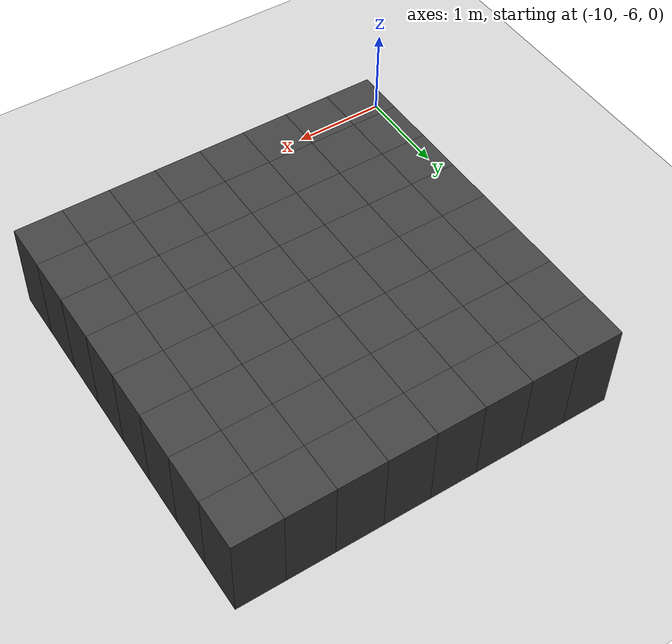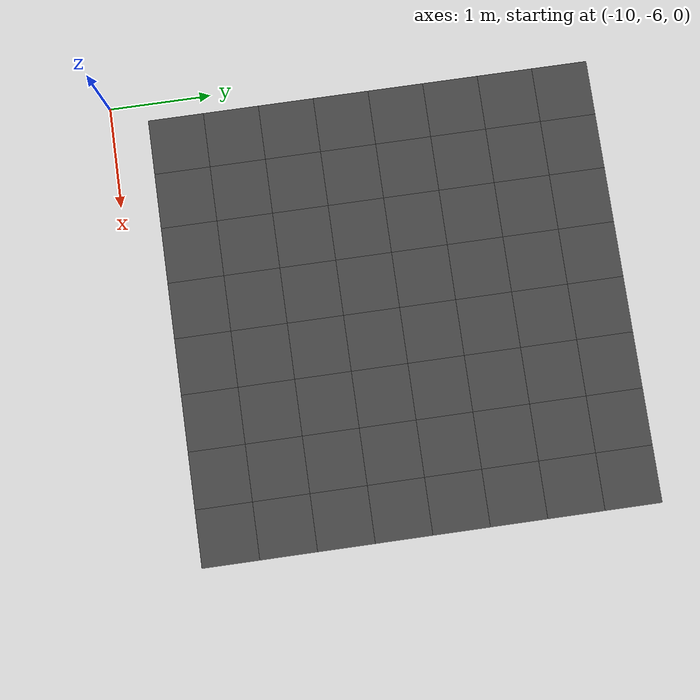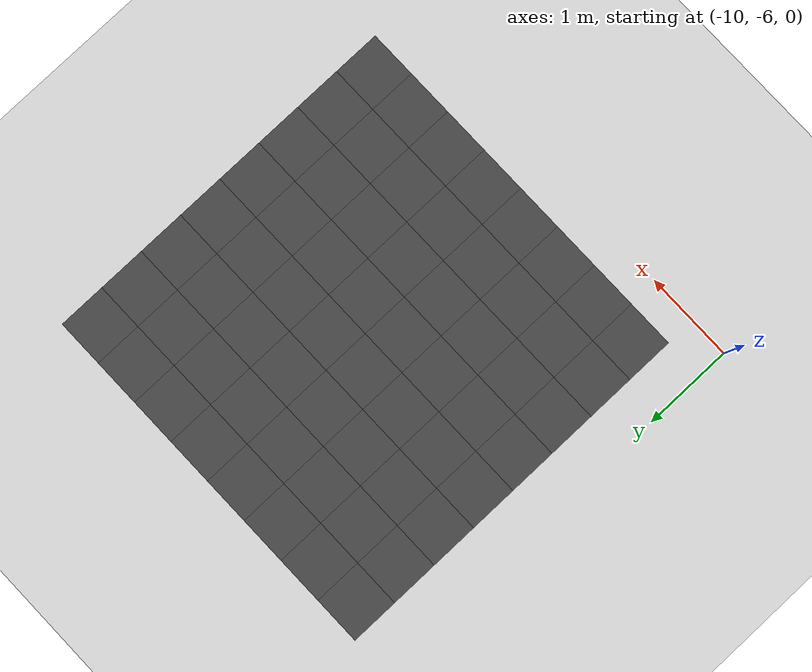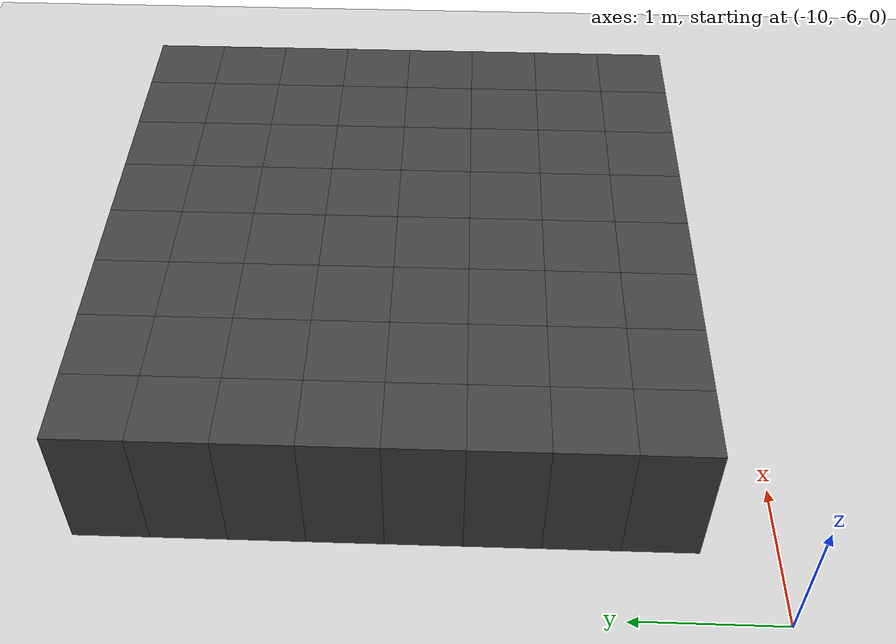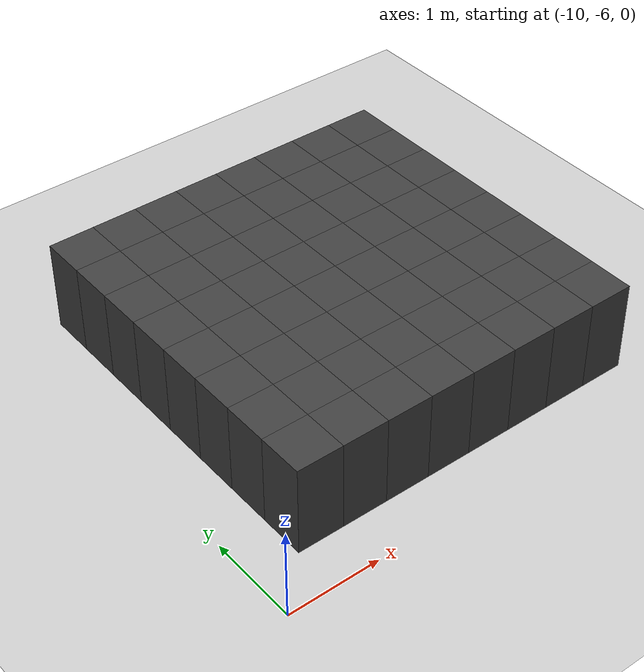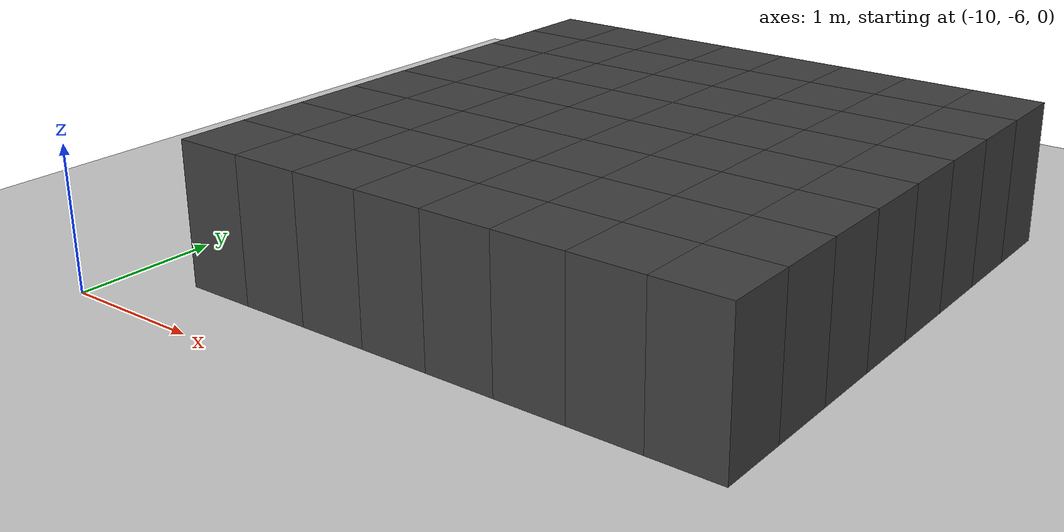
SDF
<sdf version="1.7">
 <world name="map_14980">
  <model name="ground_plane">
   <static>true</static>
   <link name="link">
    <collision name="collision">
     <geometry><plane><normal>0 0 1</normal><size>200 200</size></plane></geometry>
    </collision>
    <visual name="visual">
     <geometry><plane><normal>0 0 1</normal><size>200 200</size></plane></geometry>
     <material><ambient>0.8 0.8 0.8 1</ambient><diffuse>0.8 0.8 0.8 1</diffuse></material>
    </visual>
   </link>
  </model>
  <model name="maze_environment">
   <static>true</static>
   <link name="wall_996">
    <pose>-9.250 -1.750 0.500 0 0 0</pose>
    <collision name="col"><geometry><box><size>0.5 0.5 1.0</size></box></geometry></collision>
    <visual name="vis">
     <geometry><box><size>0.5 0.5 1.0</size></box></geometry>
     <material><ambient>0.15 0.15 0.15 1</ambient><diffuse>0.25 0.25 0.25 1</diffuse></material>
    </visual>
   </link>
   <link name="wall_997">
    <pose>-8.750 -1.750 0.500 0 0 0</pose>
    <collision name="col"><geometry><box><size>0.5 0.5 1.0</size></box></geometry></collision>
    <visual name="vis">
     <geometry><box><size>0.5 0.5 1.0</size></box></geometry>
     <material><ambient>0.15 0.15 0.15 1</ambient><diffuse>0.25 0.25 0.25 1</diffuse></material>
    </visual>
   </link>
   <link name="wall_998">
    <pose>-8.250 -1.750 0.500 0 0 0</pose>
    <collision name="col"><geometry><box><size>0.5 0.5 1.0</size></box></geometry></collision>
    <visual name="vis">
     <geometry><box><size>0.5 0.5 1.0</size></box></geometry>
     <material><ambient>0.15 0.15 0.15 1</ambient><diffuse>0.25 0.25 0.25 1</diffuse></material>
    </visual>
   </link>
   <link name="wall_999">
    <pose>-7.750 -1.750 0.500 0 0 0</pose>
    <collision name="col"><geometry><box><size>0.5 0.5 1.0</size></box></geometry></collision>
    <visual name="vis">
     <geometry><box><size>0.5 0.5 1.0</size></box></geometry>
     <material><ambient>0.15 0.15 0.15 1</ambient><diffuse>0.25 0.25 0.25 1</diffuse></material>
    </visual>
   </link>
   <link name="wall_1000">
    <pose>-7.250 -1.750 0.500 0 0 0</pose>
    <collision name="col"><geometry><box><size>0.5 0.5 1.0</size></box></geometry></collision>
    <visual name="vis">
     <geometry><box><size>0.5 0.5 1.0</size></box></geometry>
     <material><ambient>0.15 0.15 0.15 1</ambient><diffuse>0.25 0.25 0.25 1</diffuse></material>
    </visual>
   </link>
   <link name="wall_1001">
    <pose>-6.750 -1.750 0.500 0 0 0</pose>
    <collision name="col"><geometry><box><size>0.5 0.5 1.0</size></box></geometry></collision>
    <visual name="vis">
     <geometry><box><size>0.5 0.5 1.0</size></box></geometry>
     <material><ambient>0.15 0.15 0.15 1</ambient><diffuse>0.25 0.25 0.25 1</diffuse></material>
    </visual>
   </link>
   <link name="wall_1002">
    <pose>-6.250 -1.750 0.500 0 0 0</pose>
    <collision name="col"><geometry><box><size>0.5 0.5 1.0</size></box></geometry></collision>
    <visual name="vis">
     <geometry><box><size>0.5 0.5 1.0</size></box></geometry>
     <material><ambient>0.15 0.15 0.15 1</ambient><diffuse>0.25 0.25 0.25 1</diffuse></material>
    </visual>
   </link>
   <link name="wall_1003">
    <pose>-5.750 -1.750 0.500 0 0 0</pose>
    <collision name="col"><geometry><box><size>0.5 0.5 1.0</size></box></geometry></collision>
    <visual name="vis">
     <geometry><box><size>0.5 0.5 1.0</size></box></geometry>
     <material><ambient>0.15 0.15 0.15 1</ambient><diffuse>0.25 0.25 0.25 1</diffuse></material>
    </visual>
   </link>
   <link name="wall_1035">
    <pose>-9.250 -2.250 0.500 0 0 0</pose>
    <collision name="col"><geometry><box><size>0.5 0.5 1.0</size></box></geometry></collision>
    <visual name="vis">
     <geometry><box><size>0.5 0.5 1.0</size></box></geometry>
     <material><ambient>0.15 0.15 0.15 1</ambient><diffuse>0.25 0.25 0.25 1</diffuse></material>
    </visual>
   </link>
   <link name="wall_1036">
    <pose>-8.750 -2.250 0.500 0 0 0</pose>
    <collision name="col"><geometry><box><size>0.5 0.5 1.0</size></box></geometry></collision>
    <visual name="vis">
     <geometry><box><size>0.5 0.5 1.0</size></box></geometry>
     <material><ambient>0.15 0.15 0.15 1</ambient><diffuse>0.25 0.25 0.25 1</diffuse></material>
    </visual>
   </link>
   <link name="wall_1037">
    <pose>-8.250 -2.250 0.500 0 0 0</pose>
    <collision name="col"><geometry><box><size>0.5 0.5 1.0</size></box></geometry></collision>
    <visual name="vis">
     <geometry><box><size>0.5 0.5 1.0</size></box></geometry>
     <material><ambient>0.15 0.15 0.15 1</ambient><diffuse>0.25 0.25 0.25 1</diffuse></material>
    </visual>
   </link>
   <link name="wall_1038">
    <pose>-7.750 -2.250 0.500 0 0 0</pose>
    <collision name="col"><geometry><box><size>0.5 0.5 1.0</size></box></geometry></collision>
    <visual name="vis">
     <geometry><box><size>0.5 0.5 1.0</size></box></geometry>
     <material><ambient>0.15 0.15 0.15 1</ambient><diffuse>0.25 0.25 0.25 1</diffuse></material>
    </visual>
   </link>
   <link name="wall_1039">
    <pose>-7.250 -2.250 0.500 0 0 0</pose>
    <collision name="col"><geometry><box><size>0.5 0.5 1.0</size></box></geometry></collision>
    <visual name="vis">
     <geometry><box><size>0.5 0.5 1.0</size></box></geometry>
     <material><ambient>0.15 0.15 0.15 1</ambient><diffuse>0.25 0.25 0.25 1</diffuse></material>
    </visual>
   </link>
   <link name="wall_1040">
    <pose>-6.750 -2.250 0.500 0 0 0</pose>
    <collision name="col"><geometry><box><size>0.5 0.5 1.0</size></box></geometry></collision>
    <visual name="vis">
     <geometry><box><size>0.5 0.5 1.0</size></box></geometry>
     <material><ambient>0.15 0.15 0.15 1</ambient><diffuse>0.25 0.25 0.25 1</diffuse></material>
    </visual>
   </link>
   <link name="wall_1041">
    <pose>-6.250 -2.250 0.500 0 0 0</pose>
    <collision name="col"><geometry><box><size>0.5 0.5 1.0</size></box></geometry></collision>
    <visual name="vis">
     <geometry><box><size>0.5 0.5 1.0</size></box></geometry>
     <material><ambient>0.15 0.15 0.15 1</ambient><diffuse>0.25 0.25 0.25 1</diffuse></material>
    </visual>
   </link>
   <link name="wall_1042">
    <pose>-5.750 -2.250 0.500 0 0 0</pose>
    <collision name="col"><geometry><box><size>0.5 0.5 1.0</size></box></geometry></collision>
    <visual name="vis">
     <geometry><box><size>0.5 0.5 1.0</size></box></geometry>
     <material><ambient>0.15 0.15 0.15 1</ambient><diffuse>0.25 0.25 0.25 1</diffuse></material>
    </visual>
   </link>
   <link name="wall_1071">
    <pose>-9.250 -2.750 0.500 0 0 0</pose>
    <collision name="col"><geometry><box><size>0.5 0.5 1.0</size></box></geometry></collision>
    <visual name="vis">
     <geometry><box><size>0.5 0.5 1.0</size></box></geometry>
     <material><ambient>0.15 0.15 0.15 1</ambient><diffuse>0.25 0.25 0.25 1</diffuse></material>
    </visual>
   </link>
   <link name="wall_1072">
    <pose>-8.750 -2.750 0.500 0 0 0</pose>
    <collision name="col"><geometry><box><size>0.5 0.5 1.0</size></box></geometry></collision>
    <visual name="vis">
     <geometry><box><size>0.5 0.5 1.0</size></box></geometry>
     <material><ambient>0.15 0.15 0.15 1</ambient><diffuse>0.25 0.25 0.25 1</diffuse></material>
    </visual>
   </link>
   <link name="wall_1073">
    <pose>-8.250 -2.750 0.500 0 0 0</pose>
    <collision name="col"><geometry><box><size>0.5 0.5 1.0</size></box></geometry></collision>
    <visual name="vis">
     <geometry><box><size>0.5 0.5 1.0</size></box></geometry>
     <material><ambient>0.15 0.15 0.15 1</ambient><diffuse>0.25 0.25 0.25 1</diffuse></material>
    </visual>
   </link>
   <link name="wall_1074">
    <pose>-7.750 -2.750 0.500 0 0 0</pose>
    <collision name="col"><geometry><box><size>0.5 0.5 1.0</size></box></geometry></collision>
    <visual name="vis">
     <geometry><box><size>0.5 0.5 1.0</size></box></geometry>
     <material><ambient>0.15 0.15 0.15 1</ambient><diffuse>0.25 0.25 0.25 1</diffuse></material>
    </visual>
   </link>
   <link name="wall_1075">
    <pose>-7.250 -2.750 0.500 0 0 0</pose>
    <collision name="col"><geometry><box><size>0.5 0.5 1.0</size></box></geometry></collision>
    <visual name="vis">
     <geometry><box><size>0.5 0.5 1.0</size></box></geometry>
     <material><ambient>0.15 0.15 0.15 1</ambient><diffuse>0.25 0.25 0.25 1</diffuse></material>
    </visual>
   </link>
   <link name="wall_1076">
    <pose>-6.750 -2.750 0.500 0 0 0</pose>
    <collision name="col"><geometry><box><size>0.5 0.5 1.0</size></box></geometry></collision>
    <visual name="vis">
     <geometry><box><size>0.5 0.5 1.0</size></box></geometry>
     <material><ambient>0.15 0.15 0.15 1</ambient><diffuse>0.25 0.25 0.25 1</diffuse></material>
    </visual>
   </link>
   <link name="wall_1077">
    <pose>-6.250 -2.750 0.500 0 0 0</pose>
    <collision name="col"><geometry><box><size>0.5 0.5 1.0</size></box></geometry></collision>
    <visual name="vis">
     <geometry><box><size>0.5 0.5 1.0</size></box></geometry>
     <material><ambient>0.15 0.15 0.15 1</ambient><diffuse>0.25 0.25 0.25 1</diffuse></material>
    </visual>
   </link>
   <link name="wall_1078">
    <pose>-5.750 -2.750 0.500 0 0 0</pose>
    <collision name="col"><geometry><box><size>0.5 0.5 1.0</size></box></geometry></collision>
    <visual name="vis">
     <geometry><box><size>0.5 0.5 1.0</size></box></geometry>
     <material><ambient>0.15 0.15 0.15 1</ambient><diffuse>0.25 0.25 0.25 1</diffuse></material>
    </visual>
   </link>
   <link name="wall_1107">
    <pose>-9.250 -3.250 0.500 0 0 0</pose>
    <collision name="col"><geometry><box><size>0.5 0.5 1.0</size></box></geometry></collision>
    <visual name="vis">
     <geometry><box><size>0.5 0.5 1.0</size></box></geometry>
     <material><ambient>0.15 0.15 0.15 1</ambient><diffuse>0.25 0.25 0.25 1</diffuse></material>
    </visual>
   </link>
   <link name="wall_1108">
    <pose>-8.750 -3.250 0.500 0 0 0</pose>
    <collision name="col"><geometry><box><size>0.5 0.5 1.0</size></box></geometry></collision>
    <visual name="vis">
     <geometry><box><size>0.5 0.5 1.0</size></box></geometry>
     <material><ambient>0.15 0.15 0.15 1</ambient><diffuse>0.25 0.25 0.25 1</diffuse></material>
    </visual>
   </link>
   <link name="wall_1109">
    <pose>-8.250 -3.250 0.500 0 0 0</pose>
    <collision name="col"><geometry><box><size>0.5 0.5 1.0</size></box></geometry></collision>
    <visual name="vis">
     <geometry><box><size>0.5 0.5 1.0</size></box></geometry>
     <material><ambient>0.15 0.15 0.15 1</ambient><diffuse>0.25 0.25 0.25 1</diffuse></material>
    </visual>
   </link>
   <link name="wall_1110">
    <pose>-7.750 -3.250 0.500 0 0 0</pose>
    <collision name="col"><geometry><box><size>0.5 0.5 1.0</size></box></geometry></collision>
    <visual name="vis">
     <geometry><box><size>0.5 0.5 1.0</size></box></geometry>
     <material><ambient>0.15 0.15 0.15 1</ambient><diffuse>0.25 0.25 0.25 1</diffuse></material>
    </visual>
   </link>
   <link name="wall_1111">
    <pose>-7.250 -3.250 0.500 0 0 0</pose>
    <collision name="col"><geometry><box><size>0.5 0.5 1.0</size></box></geometry></collision>
    <visual name="vis">
     <geometry><box><size>0.5 0.5 1.0</size></box></geometry>
     <material><ambient>0.15 0.15 0.15 1</ambient><diffuse>0.25 0.25 0.25 1</diffuse></material>
    </visual>
   </link>
   <link name="wall_1112">
    <pose>-6.750 -3.250 0.500 0 0 0</pose>
    <collision name="col"><geometry><box><size>0.5 0.5 1.0</size></box></geometry></collision>
    <visual name="vis">
     <geometry><box><size>0.5 0.5 1.0</size></box></geometry>
     <material><ambient>0.15 0.15 0.15 1</ambient><diffuse>0.25 0.25 0.25 1</diffuse></material>
    </visual>
   </link>
   <link name="wall_1113">
    <pose>-6.250 -3.250 0.500 0 0 0</pose>
    <collision name="col"><geometry><box><size>0.5 0.5 1.0</size></box></geometry></collision>
    <visual name="vis">
     <geometry><box><size>0.5 0.5 1.0</size></box></geometry>
     <material><ambient>0.15 0.15 0.15 1</ambient><diffuse>0.25 0.25 0.25 1</diffuse></material>
    </visual>
   </link>
   <link name="wall_1114">
    <pose>-5.750 -3.250 0.500 0 0 0</pose>
    <collision name="col"><geometry><box><size>0.5 0.5 1.0</size></box></geometry></collision>
    <visual name="vis">
     <geometry><box><size>0.5 0.5 1.0</size></box></geometry>
     <material><ambient>0.15 0.15 0.15 1</ambient><diffuse>0.25 0.25 0.25 1</diffuse></material>
    </visual>
   </link>
   <link name="wall_1145">
    <pose>-9.250 -3.750 0.500 0 0 0</pose>
    <collision name="col"><geometry><box><size>0.5 0.5 1.0</size></box></geometry></collision>
    <visual name="vis">
     <geometry><box><size>0.5 0.5 1.0</size></box></geometry>
     <material><ambient>0.15 0.15 0.15 1</ambient><diffuse>0.25 0.25 0.25 1</diffuse></material>
    </visual>
   </link>
   <link name="wall_1146">
    <pose>-8.750 -3.750 0.500 0 0 0</pose>
    <collision name="col"><geometry><box><size>0.5 0.5 1.0</size></box></geometry></collision>
    <visual name="vis">
     <geometry><box><size>0.5 0.5 1.0</size></box></geometry>
     <material><ambient>0.15 0.15 0.15 1</ambient><diffuse>0.25 0.25 0.25 1</diffuse></material>
    </visual>
   </link>
   <link name="wall_1147">
    <pose>-8.250 -3.750 0.500 0 0 0</pose>
    <collision name="col"><geometry><box><size>0.5 0.5 1.0</size></box></geometry></collision>
    <visual name="vis">
     <geometry><box><size>0.5 0.5 1.0</size></box></geometry>
     <material><ambient>0.15 0.15 0.15 1</ambient><diffuse>0.25 0.25 0.25 1</diffuse></material>
    </visual>
   </link>
   <link name="wall_1148">
    <pose>-7.750 -3.750 0.500 0 0 0</pose>
    <collision name="col"><geometry><box><size>0.5 0.5 1.0</size></box></geometry></collision>
    <visual name="vis">
     <geometry><box><size>0.5 0.5 1.0</size></box></geometry>
     <material><ambient>0.15 0.15 0.15 1</ambient><diffuse>0.25 0.25 0.25 1</diffuse></material>
    </visual>
   </link>
   <link name="wall_1149">
    <pose>-7.250 -3.750 0.500 0 0 0</pose>
    <collision name="col"><geometry><box><size>0.5 0.5 1.0</size></box></geometry></collision>
    <visual name="vis">
     <geometry><box><size>0.5 0.5 1.0</size></box></geometry>
     <material><ambient>0.15 0.15 0.15 1</ambient><diffuse>0.25 0.25 0.25 1</diffuse></material>
    </visual>
   </link>
   <link name="wall_1150">
    <pose>-6.750 -3.750 0.500 0 0 0</pose>
    <collision name="col"><geometry><box><size>0.5 0.5 1.0</size></box></geometry></collision>
    <visual name="vis">
     <geometry><box><size>0.5 0.5 1.0</size></box></geometry>
     <material><ambient>0.15 0.15 0.15 1</ambient><diffuse>0.25 0.25 0.25 1</diffuse></material>
    </visual>
   </link>
   <link name="wall_1151">
    <pose>-6.250 -3.750 0.500 0 0 0</pose>
    <collision name="col"><geometry><box><size>0.5 0.5 1.0</size></box></geometry></collision>
    <visual name="vis">
     <geometry><box><size>0.5 0.5 1.0</size></box></geometry>
     <material><ambient>0.15 0.15 0.15 1</ambient><diffuse>0.25 0.25 0.25 1</diffuse></material>
    </visual>
   </link>
   <link name="wall_1152">
    <pose>-5.750 -3.750 0.500 0 0 0</pose>
    <collision name="col"><geometry><box><size>0.5 0.5 1.0</size></box></geometry></collision>
    <visual name="vis">
     <geometry><box><size>0.5 0.5 1.0</size></box></geometry>
     <material><ambient>0.15 0.15 0.15 1</ambient><diffuse>0.25 0.25 0.25 1</diffuse></material>
    </visual>
   </link>
   <link name="wall_1190">
    <pose>-9.250 -4.250 0.500 0 0 0</pose>
    <collision name="col"><geometry><box><size>0.5 0.5 1.0</size></box></geometry></collision>
    <visual name="vis">
     <geometry><box><size>0.5 0.5 1.0</size></box></geometry>
     <material><ambient>0.15 0.15 0.15 1</ambient><diffuse>0.25 0.25 0.25 1</diffuse></material>
    </visual>
   </link>
   <link name="wall_1191">
    <pose>-8.750 -4.250 0.500 0 0 0</pose>
    <collision name="col"><geometry><box><size>0.5 0.5 1.0</size></box></geometry></collision>
    <visual name="vis">
     <geometry><box><size>0.5 0.5 1.0</size></box></geometry>
     <material><ambient>0.15 0.15 0.15 1</ambient><diffuse>0.25 0.25 0.25 1</diffuse></material>
    </visual>
   </link>
   <link name="wall_1192">
    <pose>-8.250 -4.250 0.500 0 0 0</pose>
    <collision name="col"><geometry><box><size>0.5 0.5 1.0</size></box></geometry></collision>
    <visual name="vis">
     <geometry><box><size>0.5 0.5 1.0</size></box></geometry>
     <material><ambient>0.15 0.15 0.15 1</ambient><diffuse>0.25 0.25 0.25 1</diffuse></material>
    </visual>
   </link>
   <link name="wall_1193">
    <pose>-7.750 -4.250 0.500 0 0 0</pose>
    <collision name="col"><geometry><box><size>0.5 0.5 1.0</size></box></geometry></collision>
    <visual name="vis">
     <geometry><box><size>0.5 0.5 1.0</size></box></geometry>
     <material><ambient>0.15 0.15 0.15 1</ambient><diffuse>0.25 0.25 0.25 1</diffuse></material>
    </visual>
   </link>
   <link name="wall_1194">
    <pose>-7.250 -4.250 0.500 0 0 0</pose>
    <collision name="col"><geometry><box><size>0.5 0.5 1.0</size></box></geometry></collision>
    <visual name="vis">
     <geometry><box><size>0.5 0.5 1.0</size></box></geometry>
     <material><ambient>0.15 0.15 0.15 1</ambient><diffuse>0.25 0.25 0.25 1</diffuse></material>
    </visual>
   </link>
   <link name="wall_1195">
    <pose>-6.750 -4.250 0.500 0 0 0</pose>
    <collision name="col"><geometry><box><size>0.5 0.5 1.0</size></box></geometry></collision>
    <visual name="vis">
     <geometry><box><size>0.5 0.5 1.0</size></box></geometry>
     <material><ambient>0.15 0.15 0.15 1</ambient><diffuse>0.25 0.25 0.25 1</diffuse></material>
    </visual>
   </link>
   <link name="wall_1196">
    <pose>-6.250 -4.250 0.500 0 0 0</pose>
    <collision name="col"><geometry><box><size>0.5 0.5 1.0</size></box></geometry></collision>
    <visual name="vis">
     <geometry><box><size>0.5 0.5 1.0</size></box></geometry>
     <material><ambient>0.15 0.15 0.15 1</ambient><diffuse>0.25 0.25 0.25 1</diffuse></material>
    </visual>
   </link>
   <link name="wall_1197">
    <pose>-5.750 -4.250 0.500 0 0 0</pose>
    <collision name="col"><geometry><box><size>0.5 0.5 1.0</size></box></geometry></collision>
    <visual name="vis">
     <geometry><box><size>0.5 0.5 1.0</size></box></geometry>
     <material><ambient>0.15 0.15 0.15 1</ambient><diffuse>0.25 0.25 0.25 1</diffuse></material>
    </visual>
   </link>
   <link name="wall_1235">
    <pose>-9.250 -4.750 0.500 0 0 0</pose>
    <collision name="col"><geometry><box><size>0.5 0.5 1.0</size></box></geometry></collision>
    <visual name="vis">
     <geometry><box><size>0.5 0.5 1.0</size></box></geometry>
     <material><ambient>0.15 0.15 0.15 1</ambient><diffuse>0.25 0.25 0.25 1</diffuse></material>
    </visual>
   </link>
   <link name="wall_1236">
    <pose>-8.750 -4.750 0.500 0 0 0</pose>
    <collision name="col"><geometry><box><size>0.5 0.5 1.0</size></box></geometry></collision>
    <visual name="vis">
     <geometry><box><size>0.5 0.5 1.0</size></box></geometry>
     <material><ambient>0.15 0.15 0.15 1</ambient><diffuse>0.25 0.25 0.25 1</diffuse></material>
    </visual>
   </link>
   <link name="wall_1237">
    <pose>-8.250 -4.750 0.500 0 0 0</pose>
    <collision name="col"><geometry><box><size>0.5 0.5 1.0</size></box></geometry></collision>
    <visual name="vis">
     <geometry><box><size>0.5 0.5 1.0</size></box></geometry>
     <material><ambient>0.15 0.15 0.15 1</ambient><diffuse>0.25 0.25 0.25 1</diffuse></material>
    </visual>
   </link>
   <link name="wall_1238">
    <pose>-7.750 -4.750 0.500 0 0 0</pose>
    <collision name="col"><geometry><box><size>0.5 0.5 1.0</size></box></geometry></collision>
    <visual name="vis">
     <geometry><box><size>0.5 0.5 1.0</size></box></geometry>
     <material><ambient>0.15 0.15 0.15 1</ambient><diffuse>0.25 0.25 0.25 1</diffuse></material>
    </visual>
   </link>
   <link name="wall_1239">
    <pose>-7.250 -4.750 0.500 0 0 0</pose>
    <collision name="col"><geometry><box><size>0.5 0.5 1.0</size></box></geometry></collision>
    <visual name="vis">
     <geometry><box><size>0.5 0.5 1.0</size></box></geometry>
     <material><ambient>0.15 0.15 0.15 1</ambient><diffuse>0.25 0.25 0.25 1</diffuse></material>
    </visual>
   </link>
   <link name="wall_1240">
    <pose>-6.750 -4.750 0.500 0 0 0</pose>
    <collision name="col"><geometry><box><size>0.5 0.5 1.0</size></box></geometry></collision>
    <visual name="vis">
     <geometry><box><size>0.5 0.5 1.0</size></box></geometry>
     <material><ambient>0.15 0.15 0.15 1</ambient><diffuse>0.25 0.25 0.25 1</diffuse></material>
    </visual>
   </link>
   <link name="wall_1241">
    <pose>-6.250 -4.750 0.500 0 0 0</pose>
    <collision name="col"><geometry><box><size>0.5 0.5 1.0</size></box></geometry></collision>
    <visual name="vis">
     <geometry><box><size>0.5 0.5 1.0</size></box></geometry>
     <material><ambient>0.15 0.15 0.15 1</ambient><diffuse>0.25 0.25 0.25 1</diffuse></material>
    </visual>
   </link>
   <link name="wall_1242">
    <pose>-5.750 -4.750 0.500 0 0 0</pose>
    <collision name="col"><geometry><box><size>0.5 0.5 1.0</size></box></geometry></collision>
    <visual name="vis">
     <geometry><box><size>0.5 0.5 1.0</size></box></geometry>
     <material><ambient>0.15 0.15 0.15 1</ambient><diffuse>0.25 0.25 0.25 1</diffuse></material>
    </visual>
   </link>
   <link name="wall_1276">
    <pose>-9.250 -5.250 0.500 0 0 0</pose>
    <collision name="col"><geometry><box><size>0.5 0.5 1.0</size></box></geometry></collision>
    <visual name="vis">
     <geometry><box><size>0.5 0.5 1.0</size></box></geometry>
     <material><ambient>0.15 0.15 0.15 1</ambient><diffuse>0.25 0.25 0.25 1</diffuse></material>
    </visual>
   </link>
   <link name="wall_1277">
    <pose>-8.750 -5.250 0.500 0 0 0</pose>
    <collision name="col"><geometry><box><size>0.5 0.5 1.0</size></box></geometry></collision>
    <visual name="vis">
     <geometry><box><size>0.5 0.5 1.0</size></box></geometry>
     <material><ambient>0.15 0.15 0.15 1</ambient><diffuse>0.25 0.25 0.25 1</diffuse></material>
    </visual>
   </link>
   <link name="wall_1278">
    <pose>-8.250 -5.250 0.500 0 0 0</pose>
    <collision name="col"><geometry><box><size>0.5 0.5 1.0</size></box></geometry></collision>
    <visual name="vis">
     <geometry><box><size>0.5 0.5 1.0</size></box></geometry>
     <material><ambient>0.15 0.15 0.15 1</ambient><diffuse>0.25 0.25 0.25 1</diffuse></material>
    </visual>
   </link>
   <link name="wall_1279">
    <pose>-7.750 -5.250 0.500 0 0 0</pose>
    <collision name="col"><geometry><box><size>0.5 0.5 1.0</size></box></geometry></collision>
    <visual name="vis">
     <geometry><box><size>0.5 0.5 1.0</size></box></geometry>
     <material><ambient>0.15 0.15 0.15 1</ambient><diffuse>0.25 0.25 0.25 1</diffuse></material>
    </visual>
   </link>
   <link name="wall_1280">
    <pose>-7.250 -5.250 0.500 0 0 0</pose>
    <collision name="col"><geometry><box><size>0.5 0.5 1.0</size></box></geometry></collision>
    <visual name="vis">
     <geometry><box><size>0.5 0.5 1.0</size></box></geometry>
     <material><ambient>0.15 0.15 0.15 1</ambient><diffuse>0.25 0.25 0.25 1</diffuse></material>
    </visual>
   </link>
   <link name="wall_1281">
    <pose>-6.750 -5.250 0.500 0 0 0</pose>
    <collision name="col"><geometry><box><size>0.5 0.5 1.0</size></box></geometry></collision>
    <visual name="vis">
     <geometry><box><size>0.5 0.5 1.0</size></box></geometry>
     <material><ambient>0.15 0.15 0.15 1</ambient><diffuse>0.25 0.25 0.25 1</diffuse></material>
    </visual>
   </link>
   <link name="wall_1282">
    <pose>-6.250 -5.250 0.500 0 0 0</pose>
    <collision name="col"><geometry><box><size>0.5 0.5 1.0</size></box></geometry></collision>
    <visual name="vis">
     <geometry><box><size>0.5 0.5 1.0</size></box></geometry>
     <material><ambient>0.15 0.15 0.15 1</ambient><diffuse>0.25 0.25 0.25 1</diffuse></material>
    </visual>
   </link>
   <link name="wall_1283">
    <pose>-5.750 -5.250 0.500 0 0 0</pose>
    <collision name="col"><geometry><box><size>0.5 0.5 1.0</size></box></geometry></collision>
    <visual name="vis">
     <geometry><box><size>0.5 0.5 1.0</size></box></geometry>
     <material><ambient>0.15 0.15 0.15 1</ambient><diffuse>0.25 0.25 0.25 1</diffuse></material>
    </visual>
   </link>
  </model>
 </world>
</sdf>
